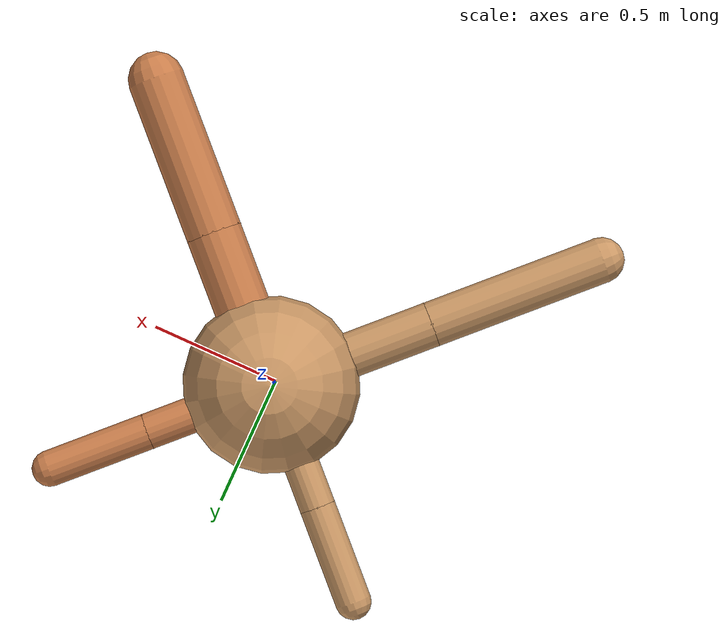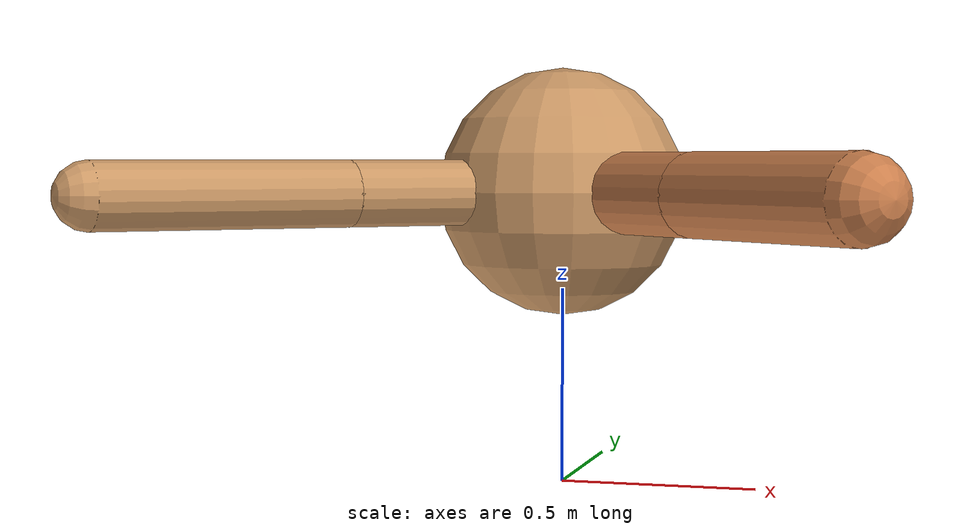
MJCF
<?xml version="1.0" ?>
<mujoco model="ant">

	<compiler angle="degree" coordinate="local" inertiafromgeom="true"/>

	<option integrator="RK4" timestep="0.01"/>

	<custom>

		<numeric data="0.0 0.0 0.55 1.0 0.0 0.0 0.0 0.0 1.0 0.0 -1.0 0.0 -1.0 0.0 1.0" name="init_qpos"/>

	</custom>

	<default>

		<joint armature="1" damping="1" limited="true"/>

		<geom conaffinity="0" condim="3" density="5.0" friction="1.5 0.1 0.1" margin="0.01" rgba="0.8 0.6 0.4 1"/>

	</default>

	<worldbody>

		<body name="torso" pos="0 0 0.75">

			<geom name="torso_geom" pos="0 0 0" size="0.31669012943765396" type="sphere"/>

			<!--joint armature="0" damping="0" limited="false" margin="0.01" name="root" pos="0 0 0" type="free"/-->

			<body name="front_left_leg" pos="0 0 0">

				<geom fromto="0 0 0 0.2 0.2 0" name="aux_1_geom" size="0.06526547220107295" type="capsule" rgba=".8 .5 .3 1"/>

				<body name="aux_1" pos="0.2 0.2 0">

					<joint axis="0 0 1" name="hip_1" pos="0.0 0.0 0.0" range="-40 40" type="hinge"/>

					<geom fromto="0 0 0 0.13111688139117378 0.13111688139117378 0" name="left_leg_geom" size="0.06526547220107295" type="capsule" rgba=".8 .5 .3 1"/>

					<body pos="0.13111688139117378 0.13111688139117378 0" name="front_left_foot">

						<joint axis="-1 1 0" name="ankle_1" pos="0.0 0.0 0.0" range="30 100" type="hinge"/>

						<geom fromto="0 0 0 0.26223376278234756 0.26223376278234756 0" name="left_ankle_geom" size="0.06526547220107295" type="capsule" rgba=".8 .5 .3 1"/>

					</body>

				</body>

			</body>

			<body name="front_right_leg" pos="0 0 0">

				<geom fromto="0 0 0 -0.2 0.2 0" name="aux_2_geom" size="0.06462755467104951" type="capsule"/>

				<body name="aux_2" pos="-0.2 0.2 0">

					<joint axis="0 0 1" name="hip_2" pos="0.0 0.0 0.0" range="-40 40" type="hinge"/>

					<geom fromto="0 0 0 -0.1272588942662358 0.1272588942662358 0" name="right_leg_geom" size="0.06462755467104951" type="capsule"/>

					<body pos="-0.1272588942662358 0.1272588942662358 0" name="front_right_foot">

						<joint axis="1 1 0" name="ankle_2" pos="0.0 0.0 0.0" range="-100 -30" type="hinge"/>

						<geom fromto="0 0 0 -0.2545177885324716 0.2545177885324716 0" name="right_ankle_geom" size="0.06462755467104951" type="capsule"/>

					</body>

				</body>

			</body>

			<body name="left_back_leg" pos="0 0 0">

				<geom fromto="0 0 0 -0.2 -0.2 0" name="aux_3_geom" size="0.08204623404463302" type="capsule"/>

				<body name="aux_3" pos="-0.2 -0.2 0">

					<joint axis="0 0 1" name="hip_3" pos="0.0 0.0 0.0" range="-40 40" type="hinge"/>

					<geom fromto="0 0 0 -0.22828237052509795 -0.22828237052509795 0" name="back_leg_geom" size="0.08204623404463302" type="capsule"/>

					<body pos="-0.22828237052509795 -0.22828237052509795 0" name="left_back_foot">

						<joint axis="-1 1 0" name="ankle_3" pos="0.0 0.0 0.0" range="-100 -30" type="hinge"/>

						<geom fromto="0 0 0 -0.4565647410501959 -0.4565647410501959 0" name="third_ankle_geom" size="0.08204623404463302" type="capsule"/>

					</body>

				</body>

			</body>

			<body name="right_back_leg" pos="0 0 0">

				<geom fromto="0 0 0 0.2 -0.2 0" name="aux_4_geom" size="0.10122872486019033" type="capsule" rgba=".8 .5 .3 1"/>

				<body name="aux_4" pos="0.2 -0.2 0">

					<joint axis="0 0 1" name="hip_4" pos="0.0 0.0 0.0" range="-40 40" type="hinge"/>

					<geom fromto="0 0 0 0.20590990056879735 -0.20590990056879735 0" name="rightback_leg_geom" size="0.10122872486019033" type="capsule" rgba=".8 .5 .3 1"/>

					<body pos="0.20590990056879735 -0.20590990056879735 0" name="right_back_foot">

						<joint axis="1 1 0" name="ankle_4" pos="0.0 0.0 0.0" range="30 100" type="hinge"/>

						<geom fromto="0 0 0 0.4118198011375947 -0.4118198011375947 0" name="fourth_ankle_geom" size="0.10122872486019033" type="capsule" rgba=".8 .5 .3 1"/>

					</body>

				</body>

			</body>

		</body>

	</worldbody>

	<actuator>

		<motor ctrllimited="true" ctrlrange="-1.0 1.0" joint="hip_4" gear="150"/>

		<motor ctrllimited="true" ctrlrange="-1.0 1.0" joint="ankle_4" gear="150"/>

		<motor ctrllimited="true" ctrlrange="-1.0 1.0" joint="hip_1" gear="150"/>

		<motor ctrllimited="true" ctrlrange="-1.0 1.0" joint="ankle_1" gear="150"/>

		<motor ctrllimited="true" ctrlrange="-1.0 1.0" joint="hip_2" gear="150"/>

		<motor ctrllimited="true" ctrlrange="-1.0 1.0" joint="ankle_2" gear="150"/>

		<motor ctrllimited="true" ctrlrange="-1.0 1.0" joint="hip_3" gear="150"/>

		<motor ctrllimited="true" ctrlrange="-1.0 1.0" joint="ankle_3" gear="150"/>

	</actuator>

</mujoco>
